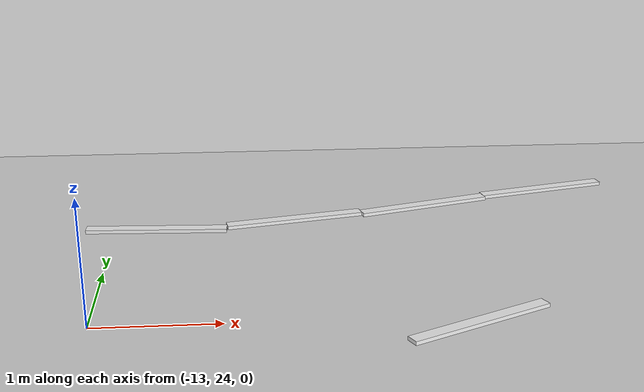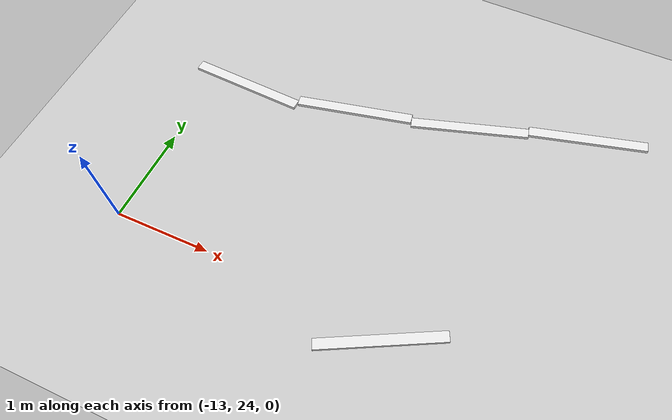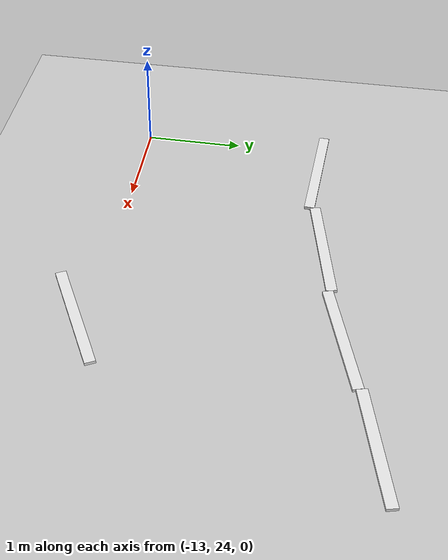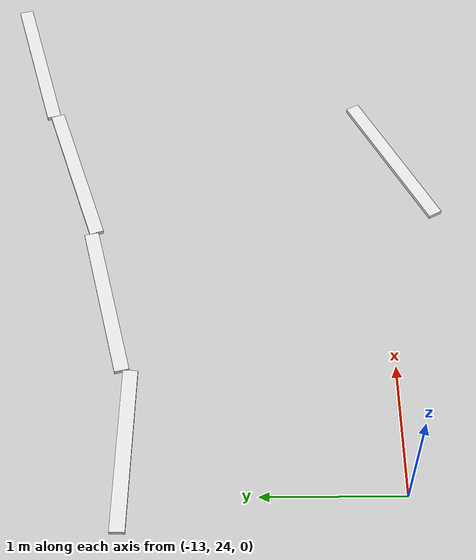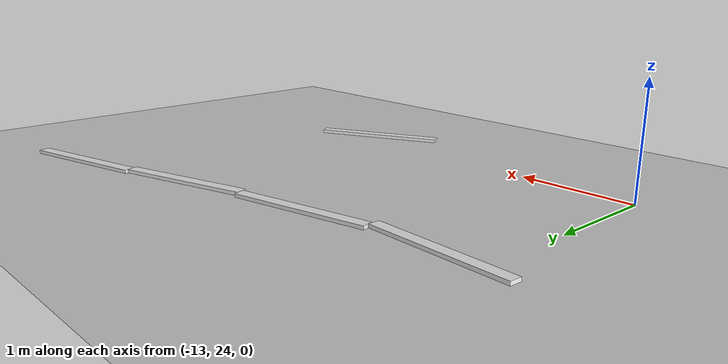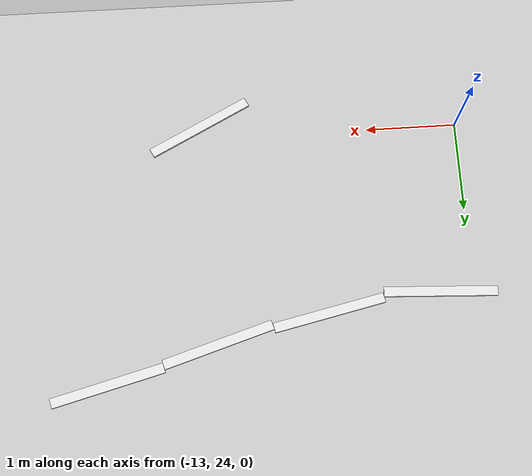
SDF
<sdf version="1.7">
 <world name="default">
  <model name="ground_plane">
   <static>1</static>
   <link name="link">
    <collision name="collision">
     <geometry><plane><normal>0 0 1</normal><size>100 100</size></plane></geometry>
     <surface><friction><ode><mu>100</mu><mu2>50</mu2></ode></friction></surface>
    </collision>
    <visual name="visual">
     <cast_shadows>0</cast_shadows>
     <geometry><plane><normal>0 0 1</normal><size>100 100</size></plane></geometry>
     <material>
      <script><uri>file://media/materials/scripts/gazebo.material</uri><name>Gazebo/Grey</name></script>
     </material>
    </visual>
   </link>
  </model>
  <model name="road_way_clone_clone_clone_0_clone_clone_clone_clone_clone">
   <link name="link">
    <inertial>
     <mass>1</mass>
     <inertia>
      <ixx>0.166667</ixx>
      <ixy>0</ixy>
      <ixz>0</ixz>
      <iyy>0.166667</iyy>
      <iyz>0</iyz>
      <izz>0.166667</izz>
     </inertia>
    </inertial>
    <visual name="visual">
     <geometry><box><size>0.106644 1.22348 0.03129</size></box></geometry>
     <material>
      <script><name>Gazebo/White</name><uri>file://media/materials/scripts/gazebo.material</uri></script>
      <shader type="pixel"><normal_map>__default__</normal_map></shader>
      <ambient>1 1 1 1</ambient>
      <diffuse>1 1 1 1</diffuse>
      <specular>0 0 0 1</specular>
      <emissive>0 0 0 1</emissive>
     </material>
    </visual>
    <collision name="collision">
     <geometry><box><size>0.10644 1.22348 0.03129</size></box></geometry>
     <surface>
      <friction>
       <ode><mu>1</mu><mu2>1</mu2><fdir1>0 0 0</fdir1><slip1>0</slip1><slip2>0</slip2></ode>
       <torsional>
        <coefficient>1</coefficient>
        <patch_radius>0</patch_radius>
        <surface_radius>0</surface_radius>
        <use_patch_radius>1</use_patch_radius>
        <ode><slip>0</slip></ode>
       </torsional>
      </friction>
      <bounce><restitution_coefficient>0</restitution_coefficient><threshold>1e+06</threshold></bounce>
      <contact>
       <collide_without_contact>0</collide_without_contact>
       <collide_without_contact_bitmask>1</collide_without_contact_bitmask>
       <collide_bitmask>1</collide_bitmask>
       <ode>
        <soft_cfm>0</soft_cfm>
        <soft_erp>0.2</soft_erp>
        <kp>1e+13</kp>
        <kd>1</kd>
        <max_vel>0.01</max_vel>
        <min_depth>0</min_depth>
       </ode>
       <bullet>
        <split_impulse>1</split_impulse>
        <split_impulse_penetration_threshold>-0.01</split_impulse_penetration_threshold>
        <soft_cfm>0</soft_cfm>
        <soft_erp>0.2</soft_erp>
        <kp>1e+13</kp>
        <kd>1</kd>
       </bullet>
      </contact>
     </surface>
    </collision>
   </link>
   <static>0</static>
   <pose>-10.125 23.8714 0.015638 1.1e-05 -0 2.05041</pose>
  </model>
  <model name="road_way_clone_clone_clone_clone_clone_clone_0_clone_0_clone_0_clone">
   <link name="link">
    <inertial>
     <mass>1</mass>
     <inertia>
      <ixx>0.166667</ixx>
      <ixy>0</ixy>
      <ixz>0</ixz>
      <iyy>0.166667</iyy>
      <iyz>0</iyz>
      <izz>0.166667</izz>
     </inertia>
    </inertial>
    <visual name="visual">
     <geometry><box><size>0.106644 1.22348 0.03129</size></box></geometry>
     <material>
      <script><name>Gazebo/White</name><uri>file://media/materials/scripts/gazebo.material</uri></script>
      <shader type="pixel"><normal_map>__default__</normal_map></shader>
      <ambient>1 1 1 1</ambient>
      <diffuse>1 1 1 1</diffuse>
      <specular>0 0 0 1</specular>
      <emissive>0 0 0 1</emissive>
     </material>
    </visual>
    <collision name="collision">
     <geometry><box><size>0.10644 1.22348 0.03129</size></box></geometry>
     <surface>
      <friction>
       <ode><mu>1</mu><mu2>1</mu2><fdir1>0 0 0</fdir1><slip1>0</slip1><slip2>0</slip2></ode>
       <torsional>
        <coefficient>1</coefficient>
        <patch_radius>0</patch_radius>
        <surface_radius>0</surface_radius>
        <use_patch_radius>1</use_patch_radius>
        <ode><slip>0</slip></ode>
       </torsional>
      </friction>
      <bounce><restitution_coefficient>0</restitution_coefficient><threshold>1e+06</threshold></bounce>
      <contact>
       <collide_without_contact>0</collide_without_contact>
       <collide_without_contact_bitmask>1</collide_without_contact_bitmask>
       <collide_bitmask>1</collide_bitmask>
       <ode>
        <soft_cfm>0</soft_cfm>
        <soft_erp>0.2</soft_erp>
        <kp>1e+13</kp>
        <kd>1</kd>
        <max_vel>0.01</max_vel>
        <min_depth>0</min_depth>
       </ode>
       <bullet>
        <split_impulse>1</split_impulse>
        <split_impulse_penetration_threshold>-0.01</split_impulse_penetration_threshold>
        <soft_cfm>0</soft_cfm>
        <soft_erp>0.2</soft_erp>
        <kp>1e+13</kp>
        <kd>1</kd>
       </bullet>
      </contact>
     </surface>
    </collision>
   </link>
   <static>0</static>
   <pose>-9.06977 26.7115 0.015638 1.1e-05 0 1.82532</pose>
  </model>
  <model name="road_way_clone_clone_clone_clone_clone_clone_0_clone_0_clone_0_clone_clone">
   <link name="link">
    <inertial>
     <mass>1</mass>
     <inertia>
      <ixx>0.166667</ixx>
      <ixy>0</ixy>
      <ixz>0</ixz>
      <iyy>0.166667</iyy>
      <iyz>0</iyz>
      <izz>0.166667</izz>
     </inertia>
    </inertial>
    <visual name="visual">
     <geometry><box><size>0.106644 1.22348 0.03129</size></box></geometry>
     <material>
      <script><name>Gazebo/White</name><uri>file://media/materials/scripts/gazebo.material</uri></script>
      <shader type="pixel"><normal_map>__default__</normal_map></shader>
      <ambient>1 1 1 1</ambient>
      <diffuse>1 1 1 1</diffuse>
      <specular>0 0 0 1</specular>
      <emissive>0 0 0 1</emissive>
     </material>
    </visual>
    <collision name="collision">
     <geometry><box><size>0.10644 1.22348 0.03129</size></box></geometry>
     <surface>
      <friction>
       <ode><mu>1</mu><mu2>1</mu2><fdir1>0 0 0</fdir1><slip1>0</slip1><slip2>0</slip2></ode>
       <torsional>
        <coefficient>1</coefficient>
        <patch_radius>0</patch_radius>
        <surface_radius>0</surface_radius>
        <use_patch_radius>1</use_patch_radius>
        <ode><slip>0</slip></ode>
       </torsional>
      </friction>
      <bounce><restitution_coefficient>0</restitution_coefficient><threshold>1e+06</threshold></bounce>
      <contact>
       <collide_without_contact>0</collide_without_contact>
       <collide_without_contact_bitmask>1</collide_without_contact_bitmask>
       <collide_bitmask>1</collide_bitmask>
       <ode>
        <soft_cfm>0</soft_cfm>
        <soft_erp>0.2</soft_erp>
        <kp>1e+13</kp>
        <kd>1</kd>
        <max_vel>0.01</max_vel>
        <min_depth>0</min_depth>
       </ode>
       <bullet>
        <split_impulse>1</split_impulse>
        <split_impulse_penetration_threshold>-0.01</split_impulse_penetration_threshold>
        <soft_cfm>0</soft_cfm>
        <soft_erp>0.2</soft_erp>
        <kp>1e+13</kp>
        <kd>1</kd>
       </bullet>
      </contact>
     </surface>
    </collision>
   </link>
   <static>0</static>
   <pose>-10.2396 26.3471 0.015638 1.1e-05 -0 1.87135</pose>
  </model>
  <model name="road_way_clone_clone_clone_clone_clone_clone_0_clone_0_clone_0_clone_clone_clone">
   <link name="link">
    <inertial>
     <mass>1</mass>
     <inertia>
      <ixx>0.166667</ixx>
      <ixy>0</ixy>
      <ixz>0</ixz>
      <iyy>0.166667</iyy>
      <iyz>0</iyz>
      <izz>0.166667</izz>
     </inertia>
    </inertial>
    <visual name="visual">
     <geometry><box><size>0.106644 1.22348 0.03129</size></box></geometry>
     <material>
      <script><name>Gazebo/White</name><uri>file://media/materials/scripts/gazebo.material</uri></script>
      <shader type="pixel"><normal_map>__default__</normal_map></shader>
      <ambient>1 1 1 1</ambient>
      <diffuse>1 1 1 1</diffuse>
      <specular>0 0 0 1</specular>
      <emissive>0 0 0 1</emissive>
     </material>
    </visual>
    <collision name="collision">
     <geometry><box><size>0.10644 1.22348 0.03129</size></box></geometry>
     <surface>
      <friction>
       <ode><mu>1</mu><mu2>1</mu2><fdir1>0 0 0</fdir1><slip1>0</slip1><slip2>0</slip2></ode>
       <torsional>
        <coefficient>1</coefficient>
        <patch_radius>0</patch_radius>
        <surface_radius>0</surface_radius>
        <use_patch_radius>1</use_patch_radius>
        <ode><slip>0</slip></ode>
       </torsional>
      </friction>
      <bounce><restitution_coefficient>0</restitution_coefficient><threshold>1e+06</threshold></bounce>
      <contact>
       <collide_without_contact>0</collide_without_contact>
       <collide_without_contact_bitmask>1</collide_without_contact_bitmask>
       <collide_bitmask>1</collide_bitmask>
       <ode>
        <soft_cfm>0</soft_cfm>
        <soft_erp>0.2</soft_erp>
        <kp>1e+13</kp>
        <kd>1</kd>
        <max_vel>0.01</max_vel>
        <min_depth>0</min_depth>
       </ode>
       <bullet>
        <split_impulse>1</split_impulse>
        <split_impulse_penetration_threshold>-0.01</split_impulse_penetration_threshold>
        <soft_cfm>0</soft_cfm>
        <soft_erp>0.2</soft_erp>
        <kp>1e+13</kp>
        <kd>1</kd>
       </bullet>
      </contact>
     </surface>
    </collision>
   </link>
   <static>0</static>
   <pose>-11.434 26.0711 0.015638 -1.1e-05 -0 1.7891</pose>
  </model>
  <model name="road_way_clone_clone_clone_clone_clone_clone_0_clone_0_clone_0_clone_clone_clone_clone">
   <link name="link">
    <inertial>
     <mass>1</mass>
     <inertia>
      <ixx>0.166667</ixx>
      <ixy>0</ixy>
      <ixz>0</ixz>
      <iyy>0.166667</iyy>
      <iyz>0</iyz>
      <izz>0.166667</izz>
     </inertia>
    </inertial>
    <visual name="visual">
     <geometry><box><size>0.106644 1.22348 0.03129</size></box></geometry>
     <material>
      <script><name>Gazebo/White</name><uri>file://media/materials/scripts/gazebo.material</uri></script>
      <shader type="pixel"><normal_map>__default__</normal_map></shader>
      <ambient>1 1 1 1</ambient>
      <diffuse>1 1 1 1</diffuse>
      <specular>0 0 0 1</specular>
      <emissive>0 0 0 1</emissive>
     </material>
    </visual>
    <collision name="collision">
     <geometry><box><size>0.10644 1.22348 0.03129</size></box></geometry>
     <surface>
      <friction>
       <ode><mu>1</mu><mu2>1</mu2><fdir1>0 0 0</fdir1><slip1>0</slip1><slip2>0</slip2></ode>
       <torsional>
        <coefficient>1</coefficient>
        <patch_radius>0</patch_radius>
        <surface_radius>0</surface_radius>
        <use_patch_radius>1</use_patch_radius>
        <ode><slip>0</slip></ode>
       </torsional>
      </friction>
      <bounce><restitution_coefficient>0</restitution_coefficient><threshold>1e+06</threshold></bounce>
      <contact>
       <collide_without_contact>0</collide_without_contact>
       <collide_without_contact_bitmask>1</collide_without_contact_bitmask>
       <collide_bitmask>1</collide_bitmask>
       <ode>
        <soft_cfm>0</soft_cfm>
        <soft_erp>0.2</soft_erp>
        <kp>1e+13</kp>
        <kd>1</kd>
        <max_vel>0.01</max_vel>
        <min_depth>0</min_depth>
       </ode>
       <bullet>
        <split_impulse>1</split_impulse>
        <split_impulse_penetration_threshold>-0.01</split_impulse_penetration_threshold>
        <soft_cfm>0</soft_cfm>
        <soft_erp>0.2</soft_erp>
        <kp>1e+13</kp>
        <kd>1</kd>
       </bullet>
      </contact>
     </surface>
    </collision>
   </link>
   <static>0</static>
   <pose>-12.643 25.9051 0.015638 1.1e-05 0 1.52606</pose>
  </model>
 </world>
</sdf>
